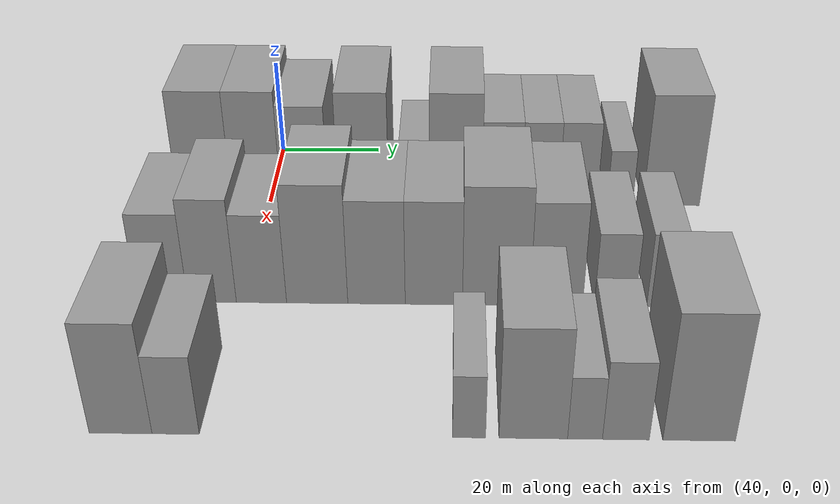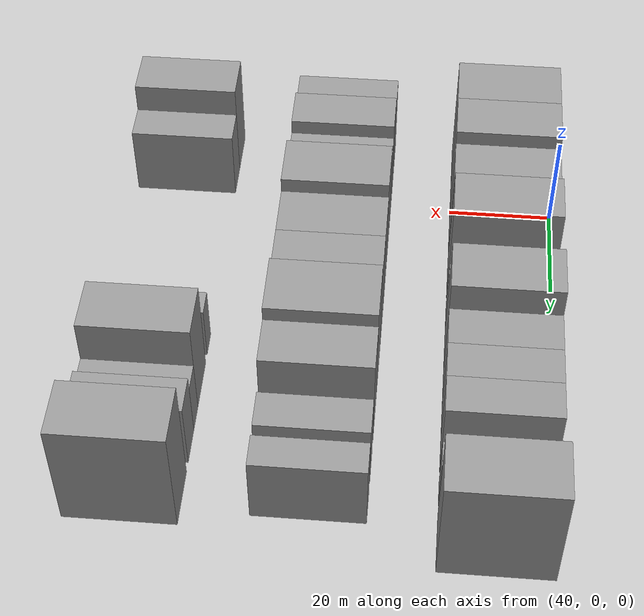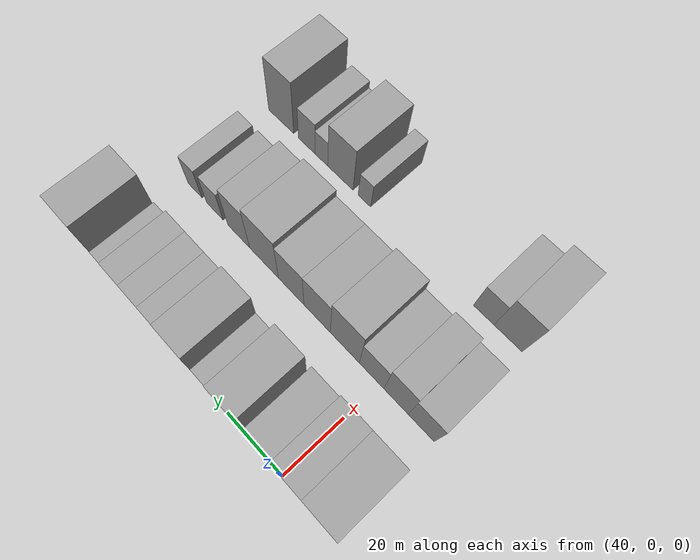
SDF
<sdf version="1.6">
 <world name="default">
  <model name="building_39">
   <static>1</static>
   <pose>50.0000 -12.8616 0 0.000000 0.000000 0.000000</pose>
   <link name="link">
    <pose>0 0 12.00 0 0 0</pose>
    <collision name="collision"><geometry><box><size>20.0000 10.6323 24.0000</size></box></geometry></collision>
    <visual name="visual">
     <cast_shadows>0</cast_shadows>
     <geometry><box><size>20.0000 10.6323 24.0000</size></box></geometry>
     <material>
      <script>
       <uri>model://grey_wall/materials/scripts</uri>
       <uri>model://grey_wall/materials/textures</uri>
       <name>vrc/grey_wall</name>
      </script>
     </material>
    </visual>
   </link>
  </model>
  <model name="building_40">
   <static>1</static>
   <pose>50.0000 -2.6944 0 0.000000 0.000000 0.000000</pose>
   <link name="link">
    <pose>0 0 12.00 0 0 0</pose>
    <collision name="collision"><geometry><box><size>20.0000 9.7022 24.0000</size></box></geometry></collision>
    <visual name="visual">
     <cast_shadows>0</cast_shadows>
     <geometry><box><size>20.0000 9.7022 24.0000</size></box></geometry>
     <material>
      <script>
       <uri>model://grey_wall/materials/scripts</uri>
       <uri>model://grey_wall/materials/textures</uri>
       <name>vrc/grey_wall</name>
      </script>
     </material>
    </visual>
   </link>
  </model>
  <model name="building_41">
   <static>1</static>
   <pose>50.0000 6.7219 0 0.000000 0.000000 0.000000</pose>
   <link name="link">
    <pose>0 0 10.50 0 0 0</pose>
    <collision name="collision"><geometry><box><size>20.0000 9.1302 21.0000</size></box></geometry></collision>
    <visual name="visual">
     <cast_shadows>0</cast_shadows>
     <geometry><box><size>20.0000 9.1302 21.0000</size></box></geometry>
     <material>
      <script>
       <uri>model://grey_wall/materials/scripts</uri>
       <uri>model://grey_wall/materials/textures</uri>
       <name>vrc/grey_wall</name>
      </script>
     </material>
    </visual>
   </link>
  </model>
  <model name="building_42">
   <static>1</static>
   <pose>50.0000 18.2332 0 0.000000 0.000000 0.000000</pose>
   <link name="link">
    <pose>0 0 12.00 0 0 0</pose>
    <collision name="collision"><geometry><box><size>20.0000 9.8925 24.0000</size></box></geometry></collision>
    <visual name="visual">
     <cast_shadows>0</cast_shadows>
     <geometry><box><size>20.0000 9.8925 24.0000</size></box></geometry>
     <material>
      <script>
       <uri>model://grey_wall/materials/scripts</uri>
       <uri>model://grey_wall/materials/textures</uri>
       <name>vrc/grey_wall</name>
      </script>
     </material>
    </visual>
   </link>
  </model>
  <model name="building_43">
   <static>1</static>
   <pose>50.0000 28.1427 0 0.000000 0.000000 0.000000</pose>
   <link name="link">
    <pose>0 0 6.00 0 0 0</pose>
    <collision name="collision"><geometry><box><size>20.0000 5.9265 12.0000</size></box></geometry></collision>
    <visual name="visual">
     <cast_shadows>0</cast_shadows>
     <geometry><box><size>20.0000 5.9265 12.0000</size></box></geometry>
     <material>
      <script>
       <uri>model://grey_wall/materials/scripts</uri>
       <uri>model://grey_wall/materials/textures</uri>
       <name>vrc/grey_wall</name>
      </script>
     </material>
    </visual>
   </link>
  </model>
  <model name="building_44">
   <static>1</static>
   <pose>50.0000 36.2251 0 0.000000 0.000000 0.000000</pose>
   <link name="link">
    <pose>0 0 12.00 0 0 0</pose>
    <collision name="collision"><geometry><box><size>20.0000 10.2384 24.0000</size></box></geometry></collision>
    <visual name="visual">
     <cast_shadows>0</cast_shadows>
     <geometry><box><size>20.0000 10.2384 24.0000</size></box></geometry>
     <material>
      <script>
       <uri>model://grey_wall/materials/scripts</uri>
       <uri>model://grey_wall/materials/textures</uri>
       <name>vrc/grey_wall</name>
      </script>
     </material>
    </visual>
   </link>
  </model>
  <model name="building_45">
   <static>1</static>
   <pose>50.0000 45.2157 0 0.000000 0.000000 0.000000</pose>
   <link name="link">
    <pose>0 0 9.00 0 0 0</pose>
    <collision name="collision"><geometry><box><size>20.0000 7.7429 18.0000</size></box></geometry></collision>
    <visual name="visual">
     <cast_shadows>0</cast_shadows>
     <geometry><box><size>20.0000 7.7429 18.0000</size></box></geometry>
     <material>
      <script>
       <uri>model://grey_wall/materials/scripts</uri>
       <uri>model://grey_wall/materials/textures</uri>
       <name>vrc/grey_wall</name>
      </script>
     </material>
    </visual>
   </link>
  </model>
  <model name="building_46">
   <static>1</static>
   <pose>50.0000 52.6903 0 0.000000 0.000000 0.000000</pose>
   <link name="link">
    <pose>0 0 9.00 0 0 0</pose>
    <collision name="collision"><geometry><box><size>20.0000 7.2062 18.0000</size></box></geometry></collision>
    <visual name="visual">
     <cast_shadows>0</cast_shadows>
     <geometry><box><size>20.0000 7.2062 18.0000</size></box></geometry>
     <material>
      <script>
       <uri>model://grey_wall/materials/scripts</uri>
       <uri>model://grey_wall/materials/textures</uri>
       <name>vrc/grey_wall</name>
      </script>
     </material>
    </visual>
   </link>
  </model>
  <model name="building_47">
   <static>1</static>
   <pose>50.0000 60.0051 0 0.000000 0.000000 0.000000</pose>
   <link name="link">
    <pose>0 0 9.00 0 0 0</pose>
    <collision name="collision"><geometry><box><size>20.0000 7.4235 18.0000</size></box></geometry></collision>
    <visual name="visual">
     <cast_shadows>0</cast_shadows>
     <geometry><box><size>20.0000 7.4235 18.0000</size></box></geometry>
     <material>
      <script>
       <uri>model://grey_wall/materials/scripts</uri>
       <uri>model://grey_wall/materials/textures</uri>
       <name>vrc/grey_wall</name>
      </script>
     </material>
    </visual>
   </link>
  </model>
  <model name="building_48">
   <static>1</static>
   <pose>50.0000 68.1985 0 0.000000 0.000000 0.000000</pose>
   <link name="link">
    <pose>0 0 6.00 0 0 0</pose>
    <collision name="collision"><geometry><box><size>20.0000 4.9632 12.0000</size></box></geometry></collision>
    <visual name="visual">
     <cast_shadows>0</cast_shadows>
     <geometry><box><size>20.0000 4.9632 12.0000</size></box></geometry>
     <material>
      <script>
       <uri>model://grey_wall/materials/scripts</uri>
       <uri>model://grey_wall/materials/textures</uri>
       <name>vrc/grey_wall</name>
      </script>
     </material>
    </visual>
   </link>
  </model>
  <model name="building_49">
   <static>1</static>
   <pose>50.0000 78.1641 0 0.000000 0.000000 0.000000</pose>
   <link name="link">
    <pose>0 0 12.00 0 0 0</pose>
    <collision name="collision"><geometry><box><size>20.0000 10.9681 24.0000</size></box></geometry></collision>
    <visual name="visual">
     <cast_shadows>0</cast_shadows>
     <geometry><box><size>20.0000 10.9681 24.0000</size></box></geometry>
     <material>
      <script>
       <uri>model://grey_wall/materials/scripts</uri>
       <uri>model://grey_wall/materials/textures</uri>
       <name>vrc/grey_wall</name>
      </script>
     </material>
    </visual>
   </link>
  </model>
  <model name="building_120">
   <static>1</static>
   <pose>82.0000 -14.3293 0 0.000000 0.000000 0.000000</pose>
   <link name="link">
    <pose>0 0 9.00 0 0 0</pose>
    <collision name="collision"><geometry><box><size>20.0000 8.7530 18.0000</size></box></geometry></collision>
    <visual name="visual">
     <cast_shadows>0</cast_shadows>
     <geometry><box><size>20.0000 8.7530 18.0000</size></box></geometry>
     <material>
      <script>
       <uri>model://grey_wall/materials/scripts</uri>
       <uri>model://grey_wall/materials/textures</uri>
       <name>vrc/grey_wall</name>
      </script>
     </material>
    </visual>
   </link>
  </model>
  <model name="building_121">
   <static>1</static>
   <pose>82.0000 -5.7515 0 0.000000 0.000000 0.000000</pose>
   <link name="link">
    <pose>0 0 10.50 0 0 0</pose>
    <collision name="collision"><geometry><box><size>20.0000 8.4025 21.0000</size></box></geometry></collision>
    <visual name="visual">
     <cast_shadows>0</cast_shadows>
     <geometry><box><size>20.0000 8.4025 21.0000</size></box></geometry>
     <material>
      <script>
       <uri>model://grey_wall/materials/scripts</uri>
       <uri>model://grey_wall/materials/textures</uri>
       <name>vrc/grey_wall</name>
      </script>
     </material>
    </visual>
   </link>
  </model>
  <model name="building_122">
   <static>1</static>
   <pose>82.0000 2.7932 0 0.000000 0.000000 0.000000</pose>
   <link name="link">
    <pose>0 0 9.00 0 0 0</pose>
    <collision name="collision"><geometry><box><size>20.0000 8.6870 18.0000</size></box></geometry></collision>
    <visual name="visual">
     <cast_shadows>0</cast_shadows>
     <geometry><box><size>20.0000 8.6870 18.0000</size></box></geometry>
     <material>
      <script>
       <uri>model://grey_wall/materials/scripts</uri>
       <uri>model://grey_wall/materials/textures</uri>
       <name>vrc/grey_wall</name>
      </script>
     </material>
    </visual>
   </link>
  </model>
  <model name="building_123">
   <static>1</static>
   <pose>82.0000 12.4283 0 0.000000 0.000000 0.000000</pose>
   <link name="link">
    <pose>0 0 12.00 0 0 0</pose>
    <collision name="collision"><geometry><box><size>20.0000 10.5831 24.0000</size></box></geometry></collision>
    <visual name="visual">
     <cast_shadows>0</cast_shadows>
     <geometry><box><size>20.0000 10.5831 24.0000</size></box></geometry>
     <material>
      <script>
       <uri>model://grey_wall/materials/scripts</uri>
       <uri>model://grey_wall/materials/textures</uri>
       <name>vrc/grey_wall</name>
      </script>
     </material>
    </visual>
   </link>
  </model>
  <model name="building_124">
   <static>1</static>
   <pose>82.0000 22.6753 0 0.000000 0.000000 0.000000</pose>
   <link name="link">
    <pose>0 0 10.50 0 0 0</pose>
    <collision name="collision"><geometry><box><size>20.0000 9.9110 21.0000</size></box></geometry></collision>
    <visual name="visual">
     <cast_shadows>0</cast_shadows>
     <geometry><box><size>20.0000 9.9110 21.0000</size></box></geometry>
     <material>
      <script>
       <uri>model://grey_wall/materials/scripts</uri>
       <uri>model://grey_wall/materials/textures</uri>
       <name>vrc/grey_wall</name>
      </script>
     </material>
    </visual>
   </link>
  </model>
  <model name="building_125">
   <static>1</static>
   <pose>82.0000 32.5608 0 0.000000 0.000000 0.000000</pose>
   <link name="link">
    <pose>0 0 10.50 0 0 0</pose>
    <collision name="collision"><geometry><box><size>20.0000 9.8601 21.0000</size></box></geometry></collision>
    <visual name="visual">
     <cast_shadows>0</cast_shadows>
     <geometry><box><size>20.0000 9.8601 21.0000</size></box></geometry>
     <material>
      <script>
       <uri>model://grey_wall/materials/scripts</uri>
       <uri>model://grey_wall/materials/textures</uri>
       <name>vrc/grey_wall</name>
      </script>
     </material>
    </visual>
   </link>
  </model>
  <model name="building_126">
   <static>1</static>
   <pose>82.0000 43.2886 0 0.000000 0.000000 0.000000</pose>
   <link name="link">
    <pose>0 0 12.00 0 0 0</pose>
    <collision name="collision"><geometry><box><size>20.0000 11.5955 24.0000</size></box></geometry></collision>
    <visual name="visual">
     <cast_shadows>0</cast_shadows>
     <geometry><box><size>20.0000 11.5955 24.0000</size></box></geometry>
     <material>
      <script>
       <uri>model://grey_wall/materials/scripts</uri>
       <uri>model://grey_wall/materials/textures</uri>
       <name>vrc/grey_wall</name>
      </script>
     </material>
    </visual>
   </link>
  </model>
  <model name="building_127">
   <static>1</static>
   <pose>82.0000 53.6057 0 0.000000 0.000000 0.000000</pose>
   <link name="link">
    <pose>0 0 10.50 0 0 0</pose>
    <collision name="collision"><geometry><box><size>20.0000 9.0386 21.0000</size></box></geometry></collision>
    <visual name="visual">
     <cast_shadows>0</cast_shadows>
     <geometry><box><size>20.0000 9.0386 21.0000</size></box></geometry>
     <material>
      <script>
       <uri>model://grey_wall/materials/scripts</uri>
       <uri>model://grey_wall/materials/textures</uri>
       <name>vrc/grey_wall</name>
      </script>
     </material>
    </visual>
   </link>
  </model>
  <model name="building_128">
   <static>1</static>
   <pose>82.0000 63.6280 0 0.000000 0.000000 0.000000</pose>
   <link name="link">
    <pose>0 0 7.50 0 0 0</pose>
    <collision name="collision"><geometry><box><size>20.0000 7.0060 15.0000</size></box></geometry></collision>
    <visual name="visual">
     <cast_shadows>0</cast_shadows>
     <geometry><box><size>20.0000 7.0060 15.0000</size></box></geometry>
     <material>
      <script>
       <uri>model://grey_wall/materials/scripts</uri>
       <uri>model://grey_wall/materials/textures</uri>
       <name>vrc/grey_wall</name>
      </script>
     </material>
    </visual>
   </link>
  </model>
  <model name="building_129">
   <static>1</static>
   <pose>82.0000 72.1640 0 0.000000 0.000000 0.000000</pose>
   <link name="link">
    <pose>0 0 7.50 0 0 0</pose>
    <collision name="collision"><geometry><box><size>20.0000 6.0661 15.0000</size></box></geometry></collision>
    <visual name="visual">
     <cast_shadows>0</cast_shadows>
     <geometry><box><size>20.0000 6.0661 15.0000</size></box></geometry>
     <material>
      <script>
       <uri>model://grey_wall/materials/scripts</uri>
       <uri>model://grey_wall/materials/textures</uri>
       <name>vrc/grey_wall</name>
      </script>
     </material>
    </visual>
   </link>
  </model>
  <model name="building_196">
   <static>1</static>
   <pose>114.0000 -13.8309 0 0.000000 0.000000 0.000000</pose>
   <link name="link">
    <pose>0 0 10.50 0 0 0</pose>
    <collision name="collision"><geometry><box><size>20.0000 9.4668 21.0000</size></box></geometry></collision>
    <visual name="visual">
     <cast_shadows>0</cast_shadows>
     <geometry><box><size>20.0000 9.4668 21.0000</size></box></geometry>
     <material>
      <script>
       <uri>model://grey_wall/materials/scripts</uri>
       <uri>model://grey_wall/materials/textures</uri>
       <name>vrc/grey_wall</name>
      </script>
     </material>
    </visual>
   </link>
  </model>
  <model name="building_197">
   <static>1</static>
   <pose>114.0000 -5.5473 0 0.000000 0.000000 0.000000</pose>
   <link name="link">
    <pose>0 0 7.50 0 0 0</pose>
    <collision name="collision"><geometry><box><size>20.0000 7.1004 15.0000</size></box></geometry></collision>
    <visual name="visual">
     <cast_shadows>0</cast_shadows>
     <geometry><box><size>20.0000 7.1004 15.0000</size></box></geometry>
     <material>
      <script>
       <uri>model://grey_wall/materials/scripts</uri>
       <uri>model://grey_wall/materials/textures</uri>
       <name>vrc/grey_wall</name>
      </script>
     </material>
    </visual>
   </link>
  </model>
  <model name="building_198">
   <static>1</static>
   <pose>114.0000 38.3905 0 0.000000 0.000000 0.000000</pose>
   <link name="link">
    <pose>0 0 6.00 0 0 0</pose>
    <collision name="collision"><geometry><box><size>20.0000 4.9251 12.0000</size></box></geometry></collision>
    <visual name="visual">
     <cast_shadows>0</cast_shadows>
     <geometry><box><size>20.0000 4.9251 12.0000</size></box></geometry>
     <material>
      <script>
       <uri>model://grey_wall/materials/scripts</uri>
       <uri>model://grey_wall/materials/textures</uri>
       <name>vrc/grey_wall</name>
      </script>
     </material>
    </visual>
   </link>
  </model>
  <model name="building_199">
   <static>1</static>
   <pose>114.0000 47.9608 0 0.000000 0.000000 0.000000</pose>
   <link name="link">
    <pose>0 0 10.50 0 0 0</pose>
    <collision name="collision"><geometry><box><size>20.0000 10.2154 21.0000</size></box></geometry></collision>
    <visual name="visual">
     <cast_shadows>0</cast_shadows>
     <geometry><box><size>20.0000 10.2154 21.0000</size></box></geometry>
     <material>
      <script>
       <uri>model://grey_wall/materials/scripts</uri>
       <uri>model://grey_wall/materials/textures</uri>
       <name>vrc/grey_wall</name>
      </script>
     </material>
    </visual>
   </link>
  </model>
  <model name="building_200">
   <static>1</static>
   <pose>114.0000 55.6592 0 0.000000 0.000000 0.000000</pose>
   <link name="link">
    <pose>0 0 6.00 0 0 0</pose>
    <collision name="collision"><geometry><box><size>20.0000 5.1815 12.0000</size></box></geometry></collision>
    <visual name="visual">
     <cast_shadows>0</cast_shadows>
     <geometry><box><size>20.0000 5.1815 12.0000</size></box></geometry>
     <material>
      <script>
       <uri>model://grey_wall/materials/scripts</uri>
       <uri>model://grey_wall/materials/textures</uri>
       <name>vrc/grey_wall</name>
      </script>
     </material>
    </visual>
   </link>
  </model>
  <model name="building_201">
   <static>1</static>
   <pose>114.0000 61.7415 0 0.000000 0.000000 0.000000</pose>
   <link name="link">
    <pose>0 0 7.50 0 0 0</pose>
    <collision name="collision"><geometry><box><size>20.0000 6.9831 15.0000</size></box></geometry></collision>
    <visual name="visual">
     <cast_shadows>0</cast_shadows>
     <geometry><box><size>20.0000 6.9831 15.0000</size></box></geometry>
     <material>
      <script>
       <uri>model://grey_wall/materials/scripts</uri>
       <uri>model://grey_wall/materials/textures</uri>
       <name>vrc/grey_wall</name>
      </script>
     </material>
    </visual>
   </link>
  </model>
  <model name="building_202">
   <static>1</static>
   <pose>114.0000 72.6273 0 0.000000 0.000000 0.000000</pose>
   <link name="link">
    <pose>0 0 12.00 0 0 0</pose>
    <collision name="collision"><geometry><box><size>20.0000 10.7885 24.0000</size></box></geometry></collision>
    <visual name="visual">
     <cast_shadows>0</cast_shadows>
     <geometry><box><size>20.0000 10.7885 24.0000</size></box></geometry>
     <material>
      <script>
       <uri>model://grey_wall/materials/scripts</uri>
       <uri>model://grey_wall/materials/textures</uri>
       <name>vrc/grey_wall</name>
      </script>
     </material>
    </visual>
   </link>
  </model>
 </world>
</sdf>
